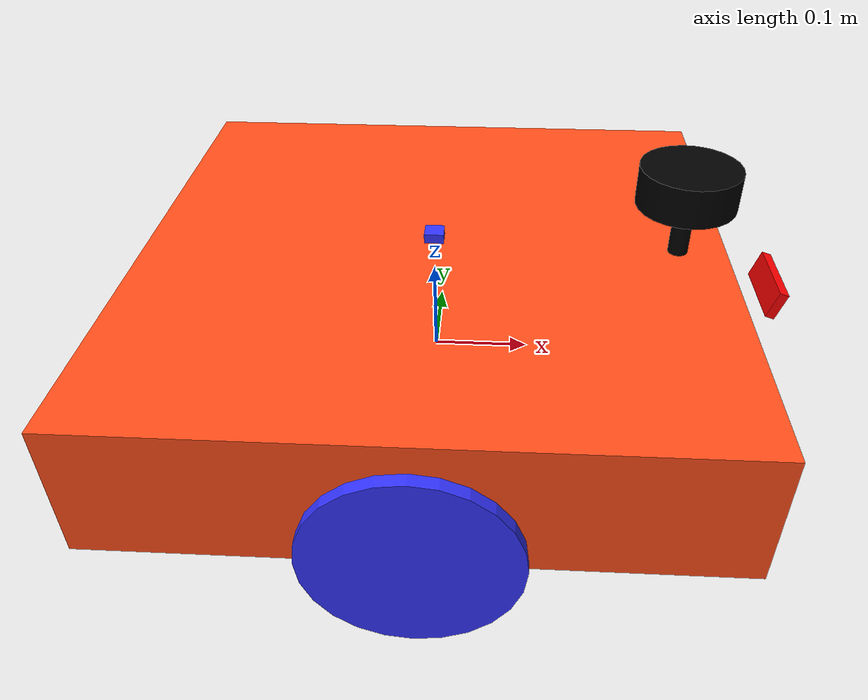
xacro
<?xml version="1.0"?>
<robot xmlns:xacro="http://www.ros.org/wiki/xacro"  name="robot">

    <xacro:include filename="robot_core.xacro" />

    <xacro:include filename="gazebo_control.xacro" />
</robot>

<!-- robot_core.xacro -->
<robot xmlns:xacro="http://www.ros.org/wiki/xacro" >

    <xacro:include filename="inertial_macros.xacro"/>

    <xacro:property name="chassis_length" value="0.6"/>
    <xacro:property name="chassis_width" value="0.6"/>
    <xacro:property name="chassis_height" value="0.138"/>
    <xacro:property name="chassis_mass" value="1.0"/>
    <xacro:property name="wheel_radius" value="0.1"/>
    <xacro:property name="wheel_thickness" value="0.026"/>
    <xacro:property name="wheel_mass" value="0.05"/>
    <xacro:property name="wheel_offset_x" value="0.3"/>
    <xacro:property name="wheel_offset_y" value="0.3"/>
    <xacro:property name="wheel_offset_z" value="0.01"/>
    <xacro:property name="caster_wheel_radius" value="0.01"/>
    <xacro:property name="caster_wheel_mass" value="0.01"/>
    <xacro:property name="caster_wheel_offset_x" value="0.3"/>
    <xacro:property name="caster_wheel_offset_z" value="${wheel_offset_z - wheel_radius + caster_wheel_radius}"/>

    <material name="white">
        <color rgba="1 1 1 1" />
    </material>

    <material name="orange">
        <color rgba="1 0.3 0.1 1"/>
    </material>

    <material name="blue">
        <color rgba="0.2 0.2 1 1"/>
    </material>

    <material name="black">
        <color rgba="0 0 0 1"/>
    </material>

    <material name="red">
        <color rgba="1 0 0 1"/>
    </material>

    <!-- BASE LINK -->

    <link name="base_link">

    </link>

    <!-- BASE_FOOTPRINT LINK -->

    <joint name="base_footprint_joint" type="fixed">
        <parent link="base_link"/>
        <child link="base_footprint"/>
        <origin xyz="0 0 0" rpy="0 0 0"/>
    </joint>

    <link name="base_footprint">
    </link>

    <!-- CHASSIS LINK -->

    <joint name="chassis_joint" type="fixed">
        <parent link="base_link"/>
        <child link="chassis"/>
        <origin xyz="${-wheel_offset_x} 0 ${-wheel_offset_z}"/>
    </joint>

    <link name="chassis">
        <visual>
            <origin xyz="${chassis_length/2} 0 ${chassis_height/2}"/>
            <geometry>
                <box size="${chassis_length} ${chassis_width} ${chassis_height}"/>
            </geometry>
            <material name="orange"/>
        </visual>
        <collision>
            <origin xyz="${chassis_length/2} 0 ${chassis_height/2}"/>
            <geometry>
                <box size="${chassis_length} ${chassis_width} ${chassis_height}"/>
            </geometry>
        </collision>
        <xacro:inertial_box mass="0.5" x="${chassis_length}" y="${chassis_width}" z="${chassis_height}">
            <origin xyz="${chassis_length/2} 0 ${chassis_height/2}" rpy="0 0 0"/>
        </xacro:inertial_box>
    </link>

    <gazebo reference="chassis">
        <material>Gazebo/Orange</material>
    </gazebo>

    <!-- LEFT WHEEL LINK -->

    <joint name="left_wheel_joint" type="continuous">
        <parent link="base_link"/>
        <child link="left_wheel"/>
        <origin xyz="0 ${wheel_offset_y} 0" rpy="-${pi/2} 0 0" />
        <axis xyz="0 0 1"/>
    </joint>

    <link name="left_wheel">
        <visual>
            <geometry>
                <cylinder radius="${wheel_radius}" length="${wheel_thickness}"/>
            </geometry>
            <material name="blue"/>
        </visual>
        <collision>
            <geometry>
                <sphere radius="${wheel_radius}"/>
            </geometry>
        </collision>
        <xacro:inertial_cylinder mass="${wheel_mass}" length="${wheel_thickness}" radius="${wheel_radius}">
            <origin xyz="0 0 0" rpy="0 0 0"/>
        </xacro:inertial_cylinder>
    </link>

    <gazebo reference="left_wheel">
        <material>Gazebo/Blue</material>
    </gazebo>

    <!-- RIGHT WHEEL LINK -->

    <joint name="right_wheel_joint" type="continuous">
        <parent link="base_link"/>
        <child link="right_wheel"/>
        <origin xyz="0 ${-wheel_offset_y} 0" rpy="${pi/2} 0 0" />
        <axis xyz="0 0 -1"/>
    </joint>

    <link name="right_wheel">
        <visual>
            <geometry>
                <cylinder radius="${wheel_radius}" length="${wheel_thickness}"/>
            </geometry>
            <material name="blue"/>
        </visual>
        <collision>
            <geometry>
                <sphere radius="${wheel_radius}"/>
            </geometry>
        </collision>
        <xacro:inertial_cylinder mass="${wheel_mass}" length="${wheel_thickness}" radius="${wheel_radius}">
            <origin xyz="0 0 0" rpy="0 0 0"/>
        </xacro:inertial_cylinder>
    </link>

    <gazebo reference="right_wheel">
        <material>Gazebo/Blue</material>
    </gazebo>

    <!-- CASTER WHEEL LINK -->

    <joint name="caster_wheel_joint" type="fixed">
        <parent link="chassis"/>
        <child link="caster_wheel"/>
        <origin xyz="0 0 ${caster_wheel_offset_z}"/>
    </joint>

    <link name="caster_wheel">
        <visual>
            <geometry>
                <sphere radius="${caster_wheel_radius}"/>
            </geometry>
            <material name="white"/>
        </visual>
        <collision>
            <geometry>
                <sphere radius="${caster_wheel_radius}"/>
            </geometry>
        </collision>
        <xacro:inertial_sphere mass="${caster_wheel_mass}" radius="${caster_wheel_radius}">
            <origin xyz="0 0 0" rpy="0 0 0"/>
        </xacro:inertial_sphere>
    </link>

    <gazebo reference="caster_wheel">
        <material>Gazebo/White</material>
        <mu1 value="0.001"/>
        <mu2 value="0.001"/>
    </gazebo>

    <joint name="caster_wheel_joint2" type="fixed">
        <parent link="chassis"/>
        <child link="caster_wheel2"/>
        <origin xyz="0.6 0 ${caster_wheel_offset_z}"/>
    </joint>

    <link name="caster_wheel2">
        <visual>
            <geometry>
                <sphere radius="${caster_wheel_radius}"/>
            </geometry>
            <material name="white"/>
        </visual>
        <collision>
            <geometry>
                <sphere radius="${caster_wheel_radius}"/>
            </geometry>
        </collision>
        <xacro:inertial_sphere mass="${caster_wheel_mass}" radius="${caster_wheel_radius}">
            <origin xyz="0 0 0" rpy="0 0 0"/>
        </xacro:inertial_sphere>
    </link>

    <gazebo reference="caster_wheel2">
        <material>Gazebo/White</material>
        <mu1 value="0.001"/>
        <mu2 value="0.001"/>
    </gazebo>
<!--Camera 1-->

    <joint name="camera_joint" type="fixed">
        <parent link="chassis"/>
        <child link="camera_link"/>
        <origin xyz="0.65 0 0.1" rpy="0 ${pi/10}  0"/>
    </joint>

    <link name="camera_link">
        <visual>
            <geometry>
                <box size="0.010 0.08 0.03"/>
            </geometry>
            <material name="red"/>
        </visual>
    </link>

    <joint name="camera_optical_joint" type="fixed">
        <parent link="camera_link"/>
        <child link="camera_link_optical"/>
        <origin xyz="0 0 0" rpy="${-pi/2} 0 ${-pi/2}"/>
    </joint>

    <link name="camera_link_optical"></link>

    <gazebo reference="camera_link">
        <material>Gazebo/Red</material>

        <sensor name="camera" type="depth">
            <pose> 0 0 0 0 0 0 </pose>
            <visualize>true</visualize>
            <update_rate>30</update_rate>
            <camera>
                <horizontal_fov>1.089</horizontal_fov>
                <image>
                    <format>B8G8R8</format>
                    <width>320</width>
                    <height>240</height>
                </image>
                <clip>
                    <near>0.05</near>
                    <far>8.0</far>
                </clip>
            </camera>
            <plugin name="camera_controller" filename="libgazebo_ros_camera.so">
                <frame_name>camera_link_optical</frame_name>
                <min_depth>0.1</min_depth>
                <max_depth>100.0</max_depth>
            </plugin>
        </sensor>
    </gazebo>
<!--Camera 2-->

<!--Camera 3-->

<!--Laser-->

    <joint name="laser_joint" type="fixed">
        <parent link="chassis"/>
        <child link="laser_frame"/>
        <origin xyz="0.55 0 0.212" rpy="0 0 ${-pi/2}"/>
    </joint>

    <link name="laser_frame">
        <visual>
            <geometry>
                <cylinder radius="0.05" length="0.04"/>
            </geometry>
            <material name="black"/>
        </visual>
        <visual>
            <origin xyz="0 0 -0.05"/>
            <geometry>
                <cylinder radius="0.01" length="0.1"/>
            </geometry>
            <material name="black"/>
        </visual>
        <collision>
            <geometry>
                <cylinder radius="0.05" length="0.04"/>
            </geometry>
        </collision>
        <xacro:inertial_cylinder mass="0.1" length="0.04" radius="0.05">
            <origin xyz="0 0 0" rpy="0 0 0"/>
        </xacro:inertial_cylinder>
    </link>

    <gazebo reference="laser_frame">
        <material>Gazebo/Black</material>

        <sensor name="laser" type="ray">
            <pose> 0 0 0 0 0 0 </pose>
            <visualize>false</visualize>
            <update_rate>10</update_rate>
            <ray>
                <scan>
                    <horizontal>
                        <samples>360</samples>
                        <min_angle>-3.14</min_angle>
                        <max_angle>3.14</max_angle>
                    </horizontal>
                </scan>
                <range>
                    <min>0.3</min>
                    <max>12</max>
                </range>
            </ray>
            <plugin name="laser_controller" filename="libgazebo_ros_ray_sensor.so">
                <ros>
                    <argument>~/out:=scan</argument>
                </ros>
                <output_type>sensor_msgs/LaserScan</output_type>
                <frame_name>laser_frame</frame_name>
            </plugin>
        </sensor>
    </gazebo>

    <!-- IMU -->

<joint name="imu_joint" type="fixed">
    <parent link="chassis"/>
    <child link="imu_link"/>
    <origin xyz="0.3 0 0.15" rpy="0 0 0"/>
</joint>

<link name="imu_link">
    <visual>
        <geometry>
            <box size="0.02 0.02 0.01"/>
        </geometry>
        <material name="blue"/>
    </visual>
</link>

<gazebo reference="imu_link">
    <sensor name="imu_sensor" type="imu">
        <always_on>true</always_on>
        <update_rate>100</update_rate>
        <visualize>false</visualize>

        <imu>
            <angular_velocity>
                <x>
                    <noise type="gaussian">
                        <mean>0.0</mean>
                        <stddev>0.0002</stddev>
                    </noise>
                </x>
                <y>
                    <noise type="gaussian">
                        <mean>0.0</mean>
                        <stddev>0.0002</stddev>
                    </noise>
                </y>
                <z>
                    <noise type="gaussian">
                        <mean>0.0</mean>
                        <stddev>0.0002</stddev>
                    </noise>
                </z>
            </angular_velocity>

            <linear_acceleration>
                <x>
                    <noise type="gaussian">
                        <mean>0.0</mean>
                        <stddev>0.017</stddev>
                    </noise>
                </x>
                <y>
                    <noise type="gaussian">
                        <mean>0.0</mean>
                        <stddev>0.017</stddev>
                    </noise>
                </y>
                <z>
                    <noise type="gaussian">
                        <mean>0.0</mean>
                        <stddev>0.017</stddev>
                    </noise>
                </z>
            </linear_acceleration>
        </imu>

        <plugin name="imu_plugin" filename="libgazebo_ros_imu_sensor.so">
            <ros>
                <namespace>/</namespace>
                <remapping>~/out:=imu</remapping>
            </ros>
            <frame_name>imu_link</frame_name>
        </plugin>
    </sensor>
</gazebo>

</robot>
